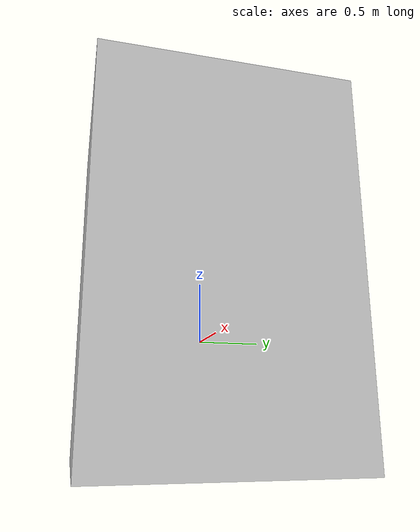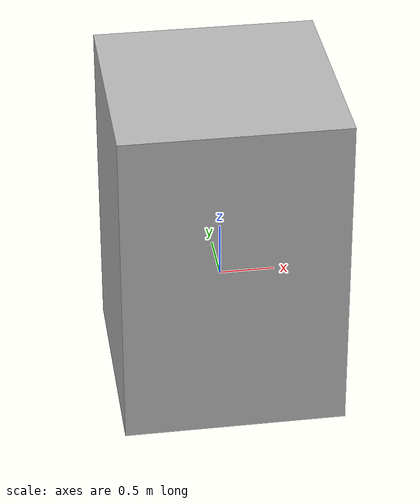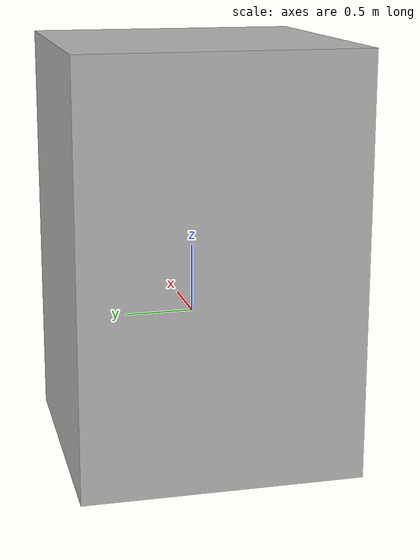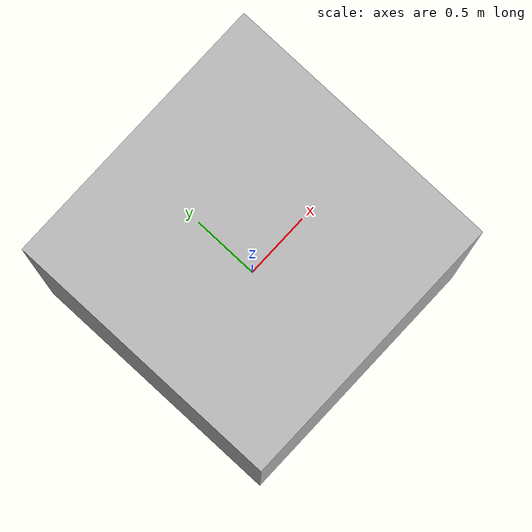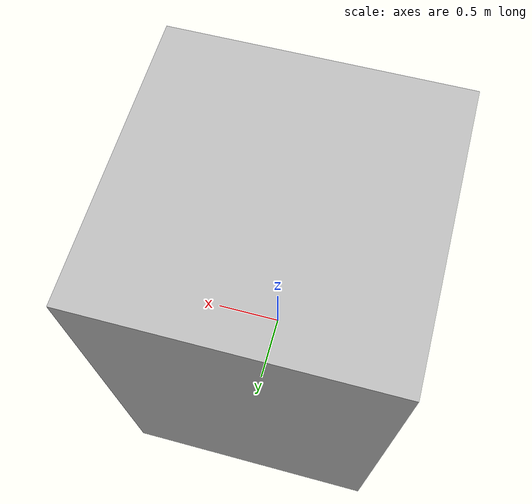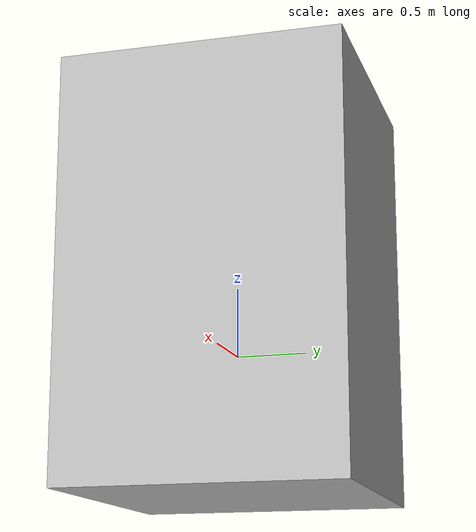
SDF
<?xml version="1.0" ?>
<sdf version="1.4">
    <model name="brick_box_1">
        <static>true</static>
        <link name="chassis">
            <pose>0 0 0.5 0 0 0</pose>
            <collision name="collision">
                <geometry>
                    <box>
                        <size>1.0 1.0 1.0</size>
                    </box>
                </geometry>
            </collision>
            <visual name="visual">
                <geometry>
                    <mesh>
                        <uri>model://brick_box_1/meshes/simple_box.dae</uri>
                        <scale>2.0 2.0 3.0</scale>
                    </mesh>
                </geometry>
                <material>
                  <script>
                    <uri>model://brick_box_1/materials/scripts</uri>
                    <uri>model://brick_box_1/materials/textures</uri>
                    <name>BrickBox/Diffuse</name>
                  </script>
                </material>
            </visual>
        </link>
    </model>
</sdf>
